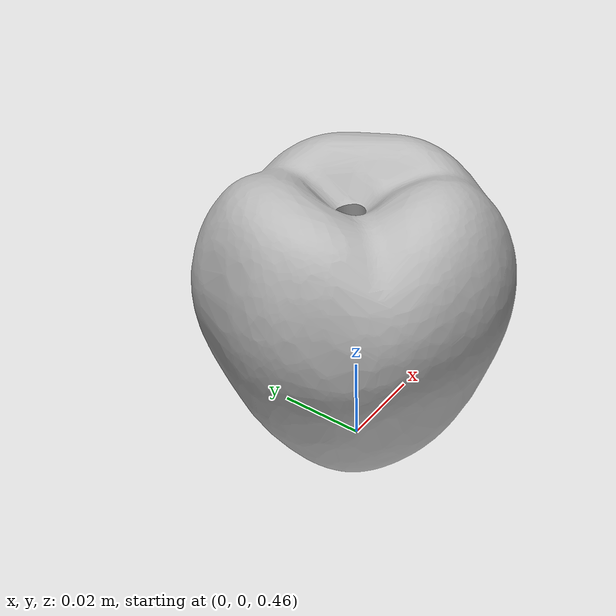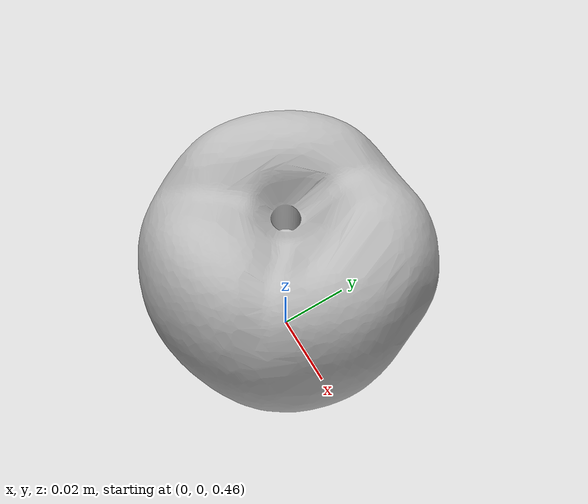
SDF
<?xml version='1.0'?>
<sdf version="1.4">
  <model name="my_model">
    <pose>0 0 0.5 0 0 0</pose>
    <static>true</static>
    <link name="link">
      <inertial>
        <mass>1.0</mass>
        <inertia> <!-- inertias are tricky to compute -->
          <!-- http://gazebosim.org/tutorials?tut=inertia&cat=build_robot -->
          <ixx>0.083</ixx>       <!-- for a box: ixx = 0.083 * mass * (y*y + z*z) -->
          <ixy>0.0</ixy>         <!-- for a box: ixy = 0 -->
          <ixz>0.0</ixz>         <!-- for a box: ixz = 0 -->
          <iyy>0.083</iyy>       <!-- for a box: iyy = 0.083 * mass * (x*x + z*z) -->
          <iyz>0.0</iyz>         <!-- for a box: iyz = 0 -->
          <izz>0.083</izz>       <!-- for a box: izz = 0.083 * mass * (x*x + y*y) -->
        </inertia>
      </inertial>
      <collision name="collision">
        <geometry>
          <mesh>
            <uri>model://apple/meshes/Apple.dae</uri>
          </mesh>
        </geometry>
      </collision>
      <visual name="visual">
        <geometry>
          <mesh>
            <uri>model://apple/meshes/Apple.dae</uri>
          </mesh>
        </geometry>
        <material>
          <script>
            <uri>model://apple/materials/scripts/</uri>
            <uri>model://apple/materials/textures/</uri>
            <name>apple/skin</name>
          </script>
        </material>
      </visual>
    </link>
  </model>
</sdf>
